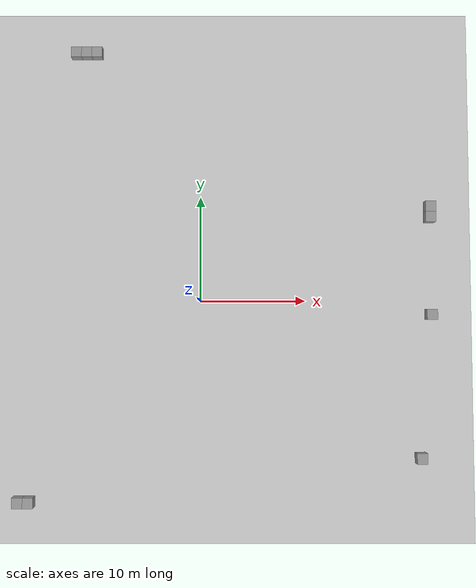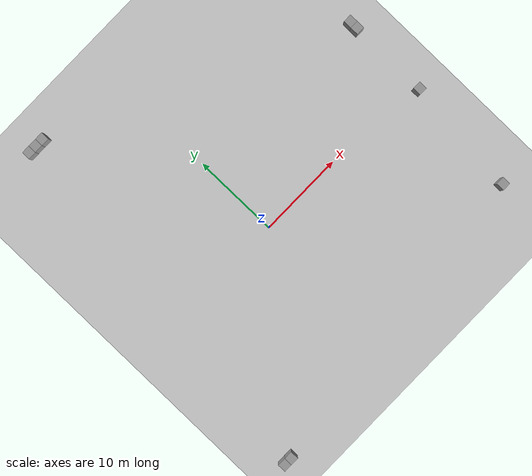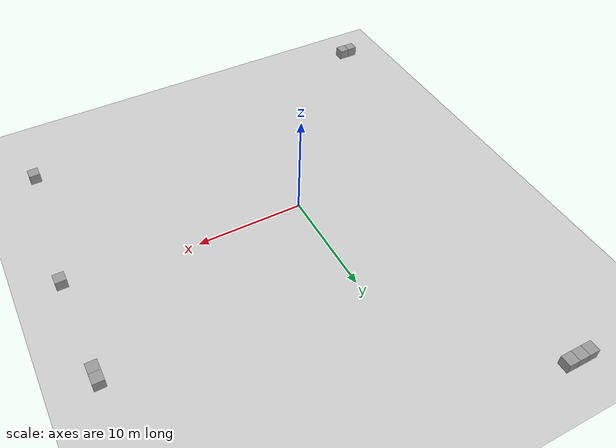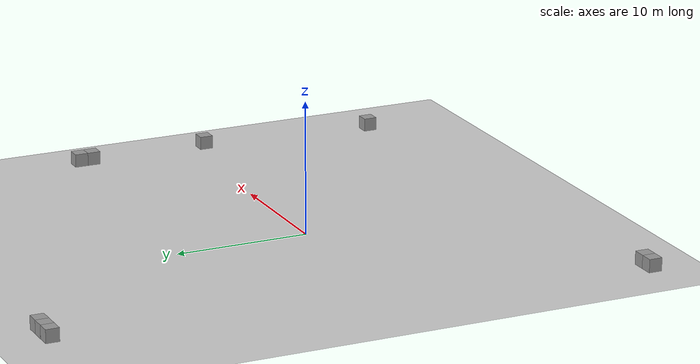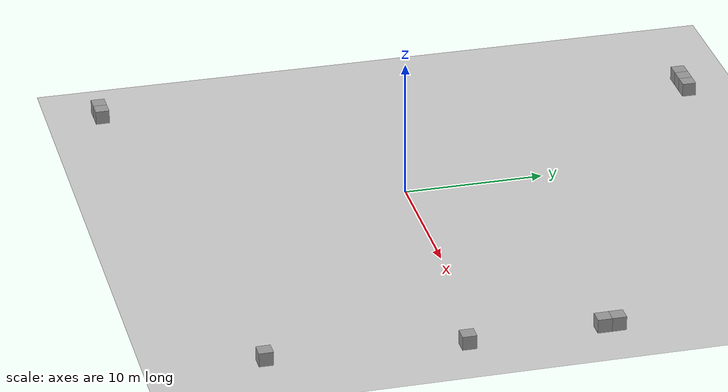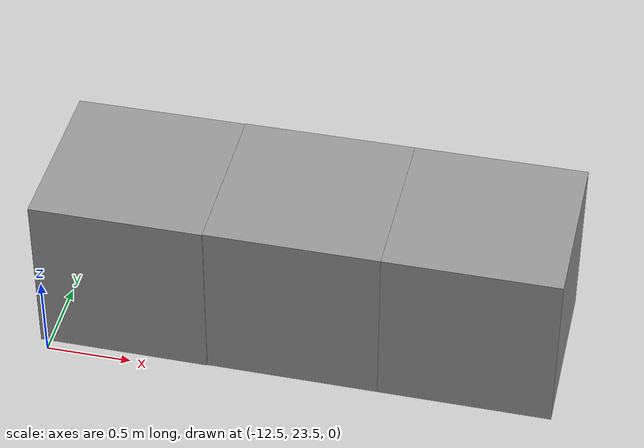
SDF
<sdf version="1.6">
 <world name="default">
  <light name="sun" type="directional">
   <pose>0 0 10 0 -0 0</pose>
   <diffuse>0.8 0.8 0.8 1</diffuse>
   <specular>0.2 0.2 0.2 1</specular>
   <attenuation>
    <range>1000</range>
    <constant>0.9</constant>
    <linear>0.01</linear>
    <quadratic>0.001</quadratic>
   </attenuation>
   <direction>-0.5 0.1 -0.9</direction>
  </light>
  <model name="ground_plane">
   <static>1</static>
   <link name="link">
    <collision name="collision">
     <geometry><plane><normal>0 0 1</normal><size>100 100</size></plane></geometry>
     <surface>
      <contact><collide_bitmask>65535</collide_bitmask></contact>
      <friction><ode><mu>100</mu><mu2>50</mu2></ode></friction>
     </surface>
    </collision>
    <visual name="visual">
     <cast_shadows>0</cast_shadows>
     <geometry><plane><normal>0 0 1</normal><size>100 100</size></plane></geometry>
     <material>
      <script><uri>file://media/materials/scripts/gazebo.material</uri><name>Gazebo/Grey</name></script>
     </material>
    </visual>
   </link>
  </model>
  <gravity>0 0 -9.8</gravity>
  <magnetic_field>6e-06 2.3e-05 -4.2e-05</magnetic_field>
  <atmosphere type="adiabatic"/>
  <physics name="default_physics" default="0" type="ode">
   <max_step_size>0.001</max_step_size>
   <real_time_factor>1</real_time_factor>
   <real_time_update_rate>1000</real_time_update_rate>
  </physics>
  <scene><ambient>0.4 0.4 0.4 1</ambient><background>0.7 0.7 0.7 1</background><shadows>1</shadows></scene>
  <audio><device>default</device></audio>
  <spherical_coordinates>
   <surface_model>EARTH_WGS84</surface_model>
   <latitude_deg>0</latitude_deg>
   <longitude_deg>0</longitude_deg>
   <elevation>0</elevation>
   <heading_deg>0</heading_deg>
  </spherical_coordinates>
  <model name="unit_box_0">
   <pose>21.9527 9.05242 0.5 -0 -0 -0.000682</pose>
   <link name="link">
    <inertial>
     <mass>1</mass>
     <inertia>
      <ixx>0.166667</ixx>
      <ixy>0</ixy>
      <ixz>0</ixz>
      <iyy>0.166667</iyy>
      <iyz>0</iyz>
      <izz>0.166667</izz>
     </inertia>
    </inertial>
    <collision name="collision"><geometry><box><size>1 1 1</size></box></geometry></collision>
    <visual name="visual">
     <geometry><box><size>1 1 1</size></box></geometry>
     <material>
      <script><name>Gazebo/Grey</name><uri>file://media/materials/scripts/gazebo.material</uri></script>
     </material>
    </visual>
   </link>
  </model>
  <model name="unit_box_1">
   <pose>21.9533 8.05238 0.5 0 0 -0.000632</pose>
   <link name="link">
    <inertial>
     <mass>1</mass>
     <inertia>
      <ixx>0.166667</ixx>
      <ixy>0</ixy>
      <ixz>0</ixz>
      <iyy>0.166667</iyy>
      <iyz>0</iyz>
      <izz>0.166667</izz>
     </inertia>
    </inertial>
    <collision name="collision"><geometry><box><size>1 1 1</size></box></geometry></collision>
    <visual name="visual">
     <geometry><box><size>1 1 1</size></box></geometry>
     <material>
      <script><name>Gazebo/Grey</name><uri>file://media/materials/scripts/gazebo.material</uri></script>
     </material>
    </visual>
   </link>
  </model>
  <model name="unit_box_2">
   <pose>-10.0582 24.0668 0.5 0 -0 4.2e-05</pose>
   <link name="link">
    <inertial>
     <mass>1</mass>
     <inertia>
      <ixx>0.166667</ixx>
      <ixy>0</ixy>
      <ixz>0</ixz>
      <iyy>0.166667</iyy>
      <iyz>0</iyz>
      <izz>0.166667</izz>
     </inertia>
    </inertial>
    <collision name="collision"><geometry><box><size>1 1 1</size></box></geometry></collision>
    <visual name="visual">
     <geometry><box><size>1 1 1</size></box></geometry>
     <material>
      <script><name>Gazebo/Grey</name><uri>file://media/materials/scripts/gazebo.material</uri></script>
     </material>
    </visual>
   </link>
  </model>
  <model name="unit_box_3">
   <pose>-11.0583 24.0668 0.5 0 -0 3.7e-05</pose>
   <link name="link">
    <inertial>
     <mass>1</mass>
     <inertia>
      <ixx>0.166667</ixx>
      <ixy>0</ixy>
      <ixz>0</ixz>
      <iyy>0.166667</iyy>
      <iyz>0</iyz>
      <izz>0.166667</izz>
     </inertia>
    </inertial>
    <collision name="collision"><geometry><box><size>1 1 1</size></box></geometry></collision>
    <visual name="visual">
     <geometry><box><size>1 1 1</size></box></geometry>
     <material>
      <script><name>Gazebo/Grey</name><uri>file://media/materials/scripts/gazebo.material</uri></script>
     </material>
    </visual>
   </link>
  </model>
  <model name="unit_box_4">
   <pose>-12.0585 24.0627 0.5 0 -0 3e-05</pose>
   <link name="link">
    <inertial>
     <mass>1</mass>
     <inertia>
      <ixx>0.166667</ixx>
      <ixy>0</ixy>
      <ixz>0</ixz>
      <iyy>0.166667</iyy>
      <iyz>0</iyz>
      <izz>0.166667</izz>
     </inertia>
    </inertial>
    <collision name="collision"><geometry><box><size>1 1 1</size></box></geometry></collision>
    <visual name="visual">
     <geometry><box><size>1 1 1</size></box></geometry>
     <material>
      <script><name>Gazebo/Grey</name><uri>file://media/materials/scripts/gazebo.material</uri></script>
     </material>
    </visual>
   </link>
  </model>
  <model name="unit_box_5">
   <pose>-16.0935 -18.8747 0.5 0 -0 1.4e-05</pose>
   <link name="link">
    <inertial>
     <mass>1</mass>
     <inertia>
      <ixx>0.166667</ixx>
      <ixy>0</ixy>
      <ixz>0</ixz>
      <iyy>0.166667</iyy>
      <iyz>0</iyz>
      <izz>0.166667</izz>
     </inertia>
    </inertial>
    <collision name="collision"><geometry><box><size>1 1 1</size></box></geometry></collision>
    <visual name="visual">
     <geometry><box><size>1 1 1</size></box></geometry>
     <material>
      <script><name>Gazebo/Grey</name><uri>file://media/materials/scripts/gazebo.material</uri></script>
     </material>
    </visual>
   </link>
  </model>
  <model name="unit_box_6">
   <pose>-17.0935 -18.8747 0.5 0 -0 8e-06</pose>
   <link name="link">
    <inertial>
     <mass>1</mass>
     <inertia>
      <ixx>0.166667</ixx>
      <ixy>0</ixy>
      <ixz>0</ixz>
      <iyy>0.166667</iyy>
      <iyz>0</iyz>
      <izz>0.166667</izz>
     </inertia>
    </inertial>
    <collision name="collision"><geometry><box><size>1 1 1</size></box></geometry></collision>
    <visual name="visual">
     <geometry><box><size>1 1 1</size></box></geometry>
     <material>
      <script><name>Gazebo/Grey</name><uri>file://media/materials/scripts/gazebo.material</uri></script>
     </material>
    </visual>
   </link>
  </model>
  <model name="unit_box_7">
   <pose>20.8087 -14.7804 0.5 0 -0 0.004762</pose>
   <link name="link">
    <inertial>
     <mass>1</mass>
     <inertia>
      <ixx>0.166667</ixx>
      <ixy>0</ixy>
      <ixz>0</ixz>
      <iyy>0.166667</iyy>
      <iyz>0</iyz>
      <izz>0.166667</izz>
     </inertia>
    </inertial>
    <collision name="collision"><geometry><box><size>1 1 1</size></box></geometry></collision>
    <visual name="visual">
     <geometry><box><size>1 1 1</size></box></geometry>
     <material>
      <script><name>Gazebo/Grey</name><uri>file://media/materials/scripts/gazebo.material</uri></script>
     </material>
    </visual>
   </link>
  </model>
  <model name="unit_box">
   <pose>21.9542 -1.26551 0.5 0 -0 -0.001278</pose>
   <link name="link">
    <inertial>
     <mass>1</mass>
     <inertia>
      <ixx>0.166667</ixx>
      <ixy>0</ixy>
      <ixz>0</ixz>
      <iyy>0.166667</iyy>
      <iyz>0</iyz>
      <izz>0.166667</izz>
     </inertia>
    </inertial>
    <collision name="collision"><geometry><box><size>1 1 1</size></box></geometry></collision>
    <visual name="visual">
     <geometry><box><size>1 1 1</size></box></geometry>
     <material>
      <script><name>Gazebo/Grey</name><uri>file://media/materials/scripts/gazebo.material</uri></script>
     </material>
    </visual>
   </link>
  </model>
 </world>
</sdf>
